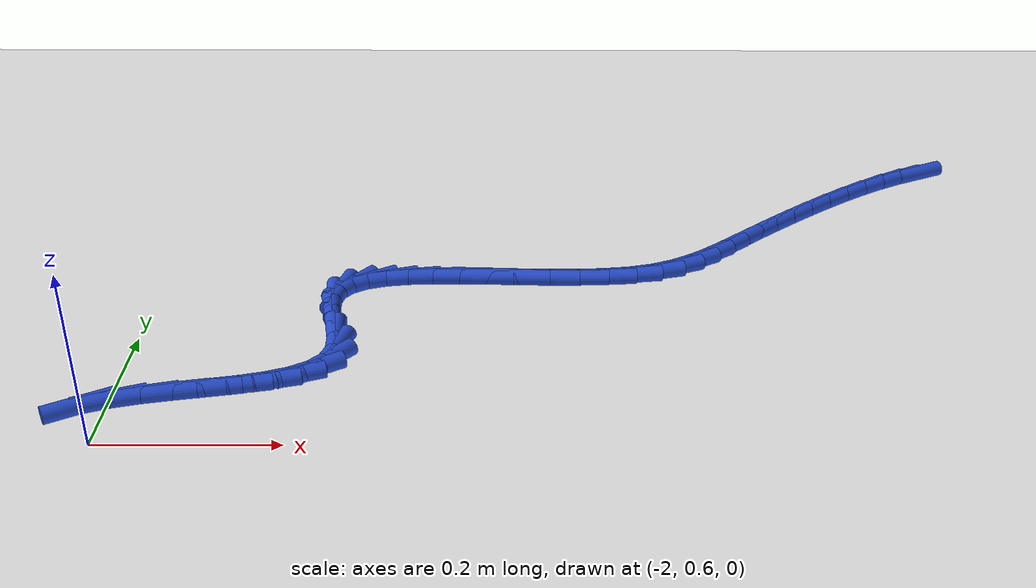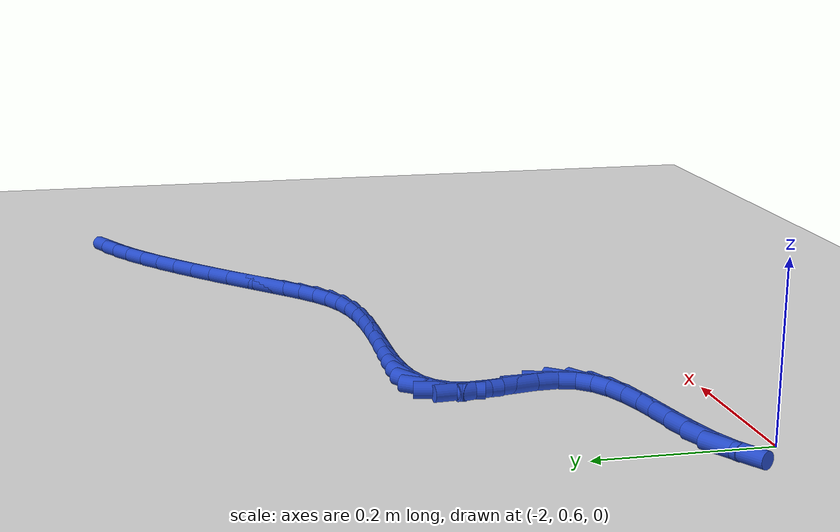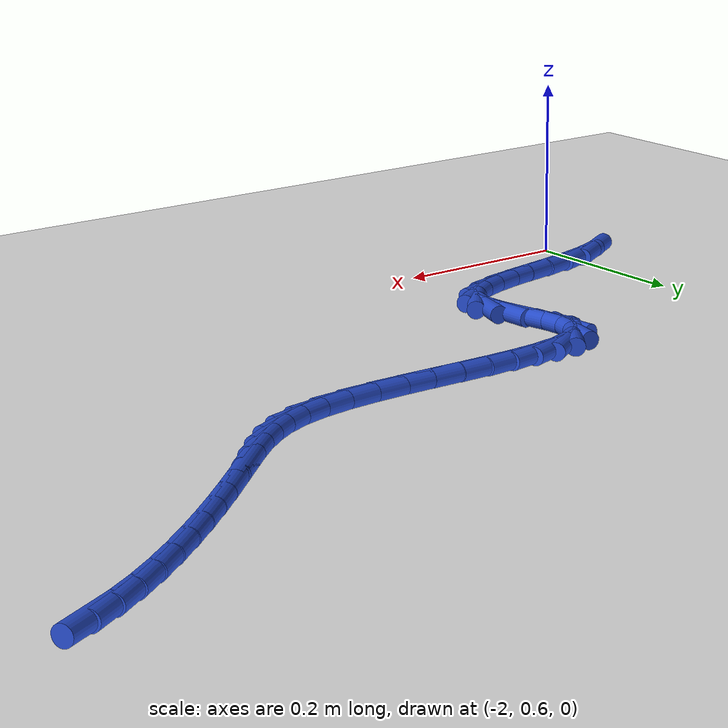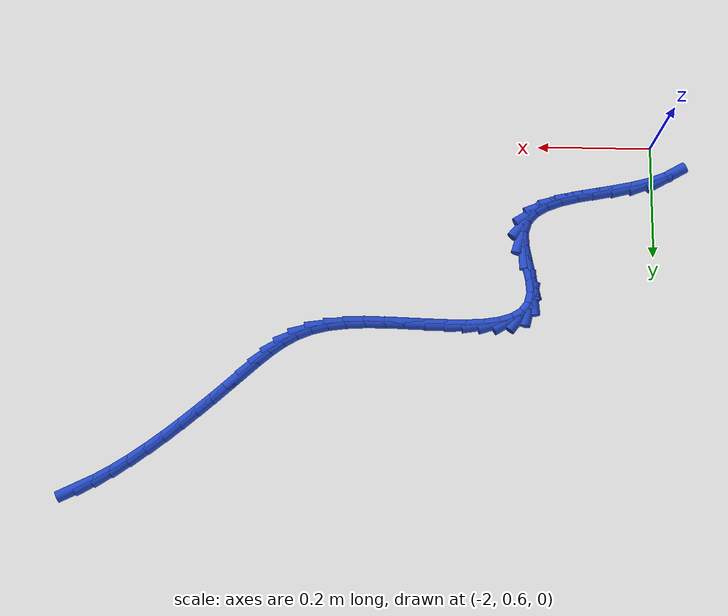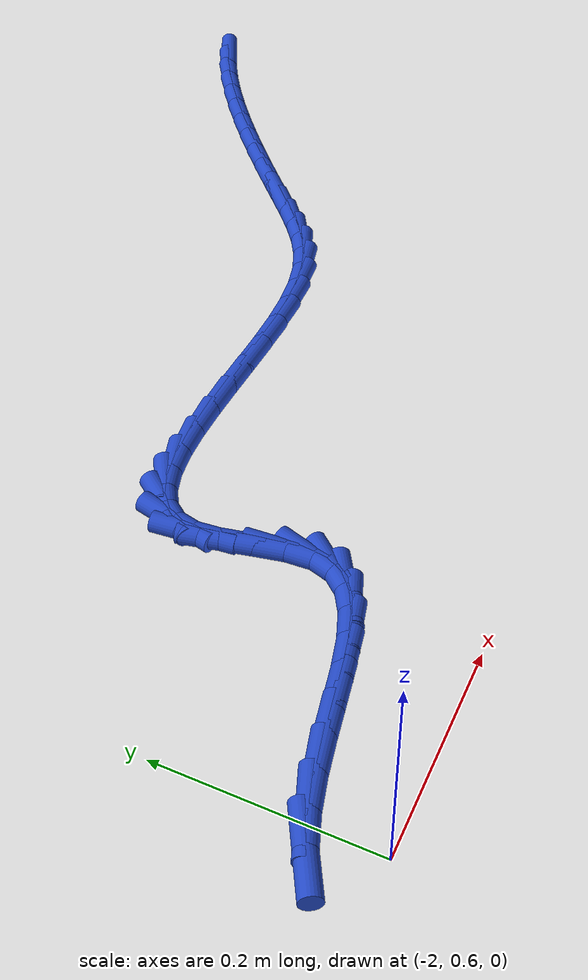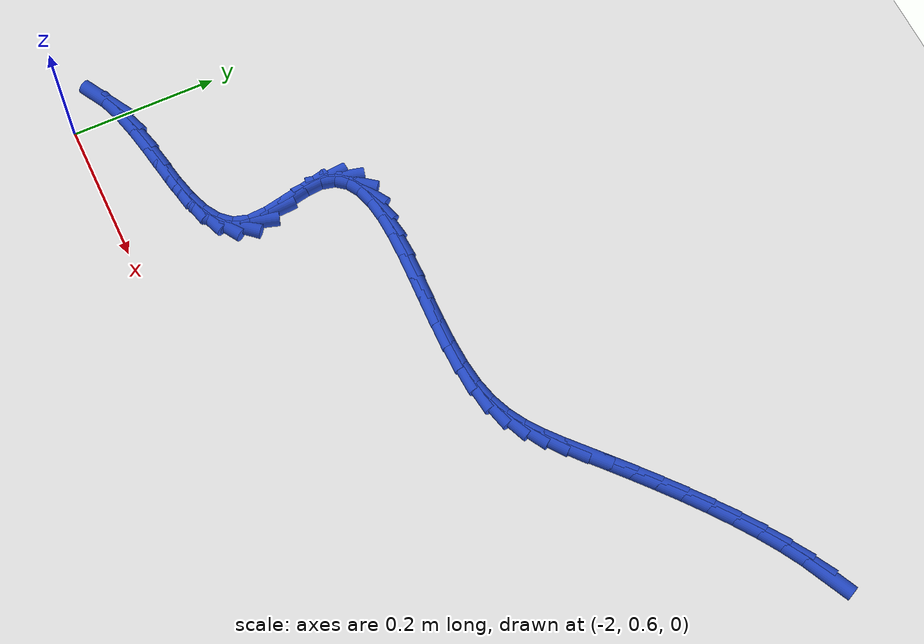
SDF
<sdf version="1.6">
 <world name="default">
  <model name="ground_plane">
   <static>1</static>
   <link name="link">
    <collision name="collision">
     <geometry><plane><normal>0 0 1</normal><size>100 100</size></plane></geometry>
     <surface><friction><ode><mu>100</mu><mu2>50</mu2></ode></friction></surface>
    </collision>
    <visual name="visual">
     <cast_shadows>0</cast_shadows>
     <geometry><plane><normal>0 0 1</normal><size>100 100</size></plane></geometry>
     <material>
      <script><uri>file://media/materials/scripts/gazebo.material</uri><name>Gazebo/WhiteGlow</name></script>
     </material>
    </visual>
   </link>
  </model>
  <model name="line">
   <link name="link_66">
    <pose>-1.024721311013423 1.2171981513148395 0.01 0 1.57 0.45368346202330473</pose>
    <collision name="collision">
     <geometry><cylinder><radius>0.01</radius><length>0.08</length></cylinder></geometry>
    </collision>
    <visual name="visual">
     <material>
      <script><name>Gazebo/Blue</name><uri>file://media/materials/scripts/gazebo.material</uri></script>
     </material>
     <geometry><cylinder><radius>0.01</radius><length>0.08</length></cylinder></geometry>
    </visual>
   </link>
   <link name="link_67">
    <pose>-1.0516665113121868 1.2040595058510333 0.01 0 1.57 0.5214539235836061</pose>
    <collision name="collision">
     <geometry><cylinder><radius>0.01</radius><length>0.08</length></cylinder></geometry>
    </collision>
    <visual name="visual">
     <material>
      <script><name>Gazebo/Blue</name><uri>file://media/materials/scripts/gazebo.material</uri></script>
     </material>
     <geometry><cylinder><radius>0.01</radius><length>0.08</length></cylinder></geometry>
    </visual>
   </link>
   <link name="link_68">
    <pose>-1.079254678940313 1.1882102691016596 0.01 0 1.57 0.5745062912305148</pose>
    <collision name="collision">
     <geometry><cylinder><radius>0.01</radius><length>0.08</length></cylinder></geometry>
    </collision>
    <visual name="visual">
     <material>
      <script><name>Gazebo/Blue</name><uri>file://media/materials/scripts/gazebo.material</uri></script>
     </material>
     <geometry><cylinder><radius>0.01</radius><length>0.08</length></cylinder></geometry>
    </visual>
   </link>
   <link name="link_69">
    <pose>-1.1072257848388778 1.1701033227674955 0.01 0 1.57 0.6165776804479559</pose>
    <collision name="collision">
     <geometry><cylinder><radius>0.01</radius><length>0.08</length></cylinder></geometry>
    </collision>
    <visual name="visual">
     <material>
      <script><name>Gazebo/Blue</name><uri>file://media/materials/scripts/gazebo.material</uri></script>
     </material>
     <geometry><cylinder><radius>0.01</radius><length>0.08</length></cylinder></geometry>
    </visual>
   </link>
   <link name="link_70">
    <pose>-1.1353197999489573 1.150191548549317 0.01 0 1.57 0.6502439988474986</pose>
    <collision name="collision">
     <geometry><cylinder><radius>0.01</radius><length>0.08</length></cylinder></geometry>
    </collision>
    <visual name="visual">
     <material>
      <script><name>Gazebo/Blue</name><uri>file://media/materials/scripts/gazebo.material</uri></script>
     </material>
     <geometry><cylinder><radius>0.01</radius><length>0.08</length></cylinder></geometry>
    </visual>
   </link>
   <link name="link_71">
    <pose>-1.1632766952116276 1.1289278281479032 0.01 0 1.57 0.6772798606839608</pose>
    <collision name="collision">
     <geometry><cylinder><radius>0.01</radius><length>0.08</length></cylinder></geometry>
    </collision>
    <visual name="visual">
     <material>
      <script><name>Gazebo/Blue</name><uri>file://media/materials/scripts/gazebo.material</uri></script>
     </material>
     <geometry><cylinder><radius>0.01</radius><length>0.08</length></cylinder></geometry>
    </visual>
   </link>
   <link name="link_72">
    <pose>-1.1908364415679642 1.1067650432640304 0.01 0 1.57 0.6988953716993768</pose>
    <collision name="collision">
     <geometry><cylinder><radius>0.01</radius><length>0.08</length></cylinder></geometry>
    </collision>
    <visual name="visual">
     <material>
      <script><name>Gazebo/Blue</name><uri>file://media/materials/scripts/gazebo.material</uri></script>
     </material>
     <geometry><cylinder><radius>0.01</radius><length>0.08</length></cylinder></geometry>
    </visual>
   </link>
   <link name="link_73">
    <pose>-1.217739009959043 1.0841560755984754 0.01 0 1.57 0.7158816792470567</pose>
    <collision name="collision">
     <geometry><cylinder><radius>0.01</radius><length>0.08</length></cylinder></geometry>
    </collision>
    <visual name="visual">
     <material>
      <script><name>Gazebo/Blue</name><uri>file://media/materials/scripts/gazebo.material</uri></script>
     </material>
     <geometry><cylinder><radius>0.01</radius><length>0.08</length></cylinder></geometry>
    </visual>
   </link>
   <link name="link_74">
    <pose>-1.2437243713259403 1.0615538068520156 0.01 0 1.57 0.7286881943029709</pose>
    <collision name="collision">
     <geometry><cylinder><radius>0.01</radius><length>0.08</length></cylinder></geometry>
    </collision>
    <visual name="visual">
     <material>
      <script><name>Gazebo/Blue</name><uri>file://media/materials/scripts/gazebo.material</uri></script>
     </material>
     <geometry><cylinder><radius>0.01</radius><length>0.08</length></cylinder></geometry>
    </visual>
   </link>
   <link name="link_75">
    <pose>-1.2685324966097327 1.039411118725428 0.01 0 1.57 0.7374391783126011</pose>
    <collision name="collision">
     <geometry><cylinder><radius>0.01</radius><length>0.08</length></cylinder></geometry>
    </collision>
    <visual name="visual">
     <material>
      <script><name>Gazebo/Blue</name><uri>file://media/materials/scripts/gazebo.material</uri></script>
     </material>
     <geometry><cylinder><radius>0.01</radius><length>0.08</length></cylinder></geometry>
    </visual>
   </link>
   <link name="link_76">
    <pose>-1.291903389928156 1.018180891363287 0.01 0 1.57 0.7365936619908413</pose>
    <collision name="collision">
     <geometry><cylinder><radius>0.01</radius><length>0.08</length></cylinder></geometry>
    </collision>
    <visual name="visual">
     <material>
      <script><name>Gazebo/Blue</name><uri>file://media/materials/scripts/gazebo.material</uri></script>
     </material>
     <geometry><cylinder><radius>0.01</radius><length>0.08</length></cylinder></geometry>
    </visual>
   </link>
   <link name="link_77">
    <pose>-1.3138210802229968 0.9983045585415887 0.01 0 1.57 0.7053982513814845</pose>
    <collision name="collision">
     <geometry><cylinder><radius>0.01</radius><length>0.08</length></cylinder></geometry>
    </collision>
    <visual name="visual">
     <material>
      <script><name>Gazebo/Blue</name><uri>file://media/materials/scripts/gazebo.material</uri></script>
     </material>
     <geometry><cylinder><radius>0.01</radius><length>0.08</length></cylinder></geometry>
    </visual>
   </link>
   <link name="link_78">
    <pose>-1.3350996364459973 0.980184619702808 0.01 0 1.57 0.6359717099641948</pose>
    <collision name="collision">
     <geometry><cylinder><radius>0.01</radius><length>0.08</length></cylinder></geometry>
    </collision>
    <visual name="visual">
     <material>
      <script><name>Gazebo/Blue</name><uri>file://media/materials/scripts/gazebo.material</uri></script>
     </material>
     <geometry><cylinder><radius>0.01</radius><length>0.08</length></cylinder></geometry>
    </visual>
   </link>
   <link name="link_79">
    <pose>-1.3567294495932747 0.9642153036263181 0.01 0 1.57 0.5288680740715266</pose>
    <collision name="collision">
     <geometry><cylinder><radius>0.01</radius><length>0.08</length></cylinder></geometry>
    </collision>
    <visual name="visual">
     <material>
      <script><name>Gazebo/Blue</name><uri>file://media/materials/scripts/gazebo.material</uri></script>
     </material>
     <geometry><cylinder><radius>0.01</radius><length>0.08</length></cylinder></geometry>
    </visual>
   </link>
   <link name="link_80">
    <pose>-1.3797009106609477 0.950790839091492 0.01 0 1.57 0.3928451804721419</pose>
    <collision name="collision">
     <geometry><cylinder><radius>0.01</radius><length>0.08</length></cylinder></geometry>
    </collision>
    <visual name="visual">
     <material>
      <script><name>Gazebo/Blue</name><uri>file://media/materials/scripts/gazebo.material</uri></script>
     </material>
     <geometry><cylinder><radius>0.01</radius><length>0.08</length></cylinder></geometry>
    </visual>
   </link>
   <link name="link_81">
    <pose>-1.4050044106451343 0.9403054548777025 0.01 0 1.57 0.24761680611885878</pose>
    <collision name="collision">
     <geometry><cylinder><radius>0.01</radius><length>0.08</length></cylinder></geometry>
    </collision>
    <visual name="visual">
     <material>
      <script><name>Gazebo/Blue</name><uri>file://media/materials/scripts/gazebo.material</uri></script>
     </material>
     <geometry><cylinder><radius>0.01</radius><length>0.08</length></cylinder></geometry>
    </visual>
   </link>
   <link name="link_82">
    <pose>-1.4335293691621445 0.933094206067047 0.01 0 1.57 0.13297187077041794</pose>
    <collision name="collision">
     <geometry><cylinder><radius>0.01</radius><length>0.08</length></cylinder></geometry>
    </collision>
    <visual name="visual">
     <material>
      <script><name>Gazebo/Blue</name><uri>file://media/materials/scripts/gazebo.material</uri></script>
     </material>
     <geometry><cylinder><radius>0.01</radius><length>0.08</length></cylinder></geometry>
    </visual>
   </link>
   <link name="link_83">
    <pose>-1.4651047118466998 0.928870651333952 0.01 0 1.57 0.05593800054021079</pose>
    <collision name="collision">
     <geometry><cylinder><radius>0.01</radius><length>0.08</length></cylinder></geometry>
    </collision>
    <visual name="visual">
     <material>
      <script><name>Gazebo/Blue</name><uri>file://media/materials/scripts/gazebo.material</uri></script>
     </material>
     <geometry><cylinder><radius>0.01</radius><length>0.08</length></cylinder></geometry>
    </visual>
   </link>
   <link name="link_84">
    <pose>-1.4989253933702482 0.9269768143106053 0.01 0 1.57 0.006441747097596129</pose>
    <collision name="collision">
     <geometry><cylinder><radius>0.01</radius><length>0.08</length></cylinder></geometry>
    </collision>
    <visual name="visual">
     <material>
      <script><name>Gazebo/Blue</name><uri>file://media/materials/scripts/gazebo.material</uri></script>
     </material>
     <geometry><cylinder><radius>0.01</radius><length>0.08</length></cylinder></geometry>
    </visual>
   </link>
   <link name="link_85">
    <pose>-1.5341778454294006 0.9267497237887373 0.01 0 1.57 -0.02164898980343656</pose>
    <collision name="collision">
     <geometry><cylinder><radius>0.01</radius><length>0.08</length></cylinder></geometry>
    </collision>
    <visual name="visual">
     <material>
      <script><name>Gazebo/Blue</name><uri>file://media/materials/scripts/gazebo.material</uri></script>
     </material>
     <geometry><cylinder><radius>0.01</radius><length>0.08</length></cylinder></geometry>
    </visual>
   </link>
   <link name="link_86">
    <pose>-1.5700484997207664 0.9275264085600768 0.01 0 1.57 -0.03131365263800175</pose>
    <collision name="collision">
     <geometry><cylinder><radius>0.01</radius><length>0.08</length></cylinder></geometry>
    </collision>
    <visual name="visual">
     <material>
      <script><name>Gazebo/Blue</name><uri>file://media/materials/scripts/gazebo.material</uri></script>
     </material>
     <geometry><cylinder><radius>0.01</radius><length>0.08</length></cylinder></geometry>
    </visual>
   </link>
   <link name="link_87">
    <pose>-1.6057237879409538 0.928643897416354 0.01 0 1.57 -0.02293815620261843</pose>
    <collision name="collision">
     <geometry><cylinder><radius>0.01</radius><length>0.08</length></cylinder></geometry>
    </collision>
    <visual name="visual">
     <material>
      <script><name>Gazebo/Blue</name><uri>file://media/materials/scripts/gazebo.material</uri></script>
     </material>
     <geometry><cylinder><radius>0.01</radius><length>0.08</length></cylinder></geometry>
    </visual>
   </link>
   <link name="link_88">
    <pose>-1.6403901417865732 0.9294392191492984 0.01 0 1.57 0.00577930049596079</pose>
    <collision name="collision">
     <geometry><cylinder><radius>0.01</radius><length>0.08</length></cylinder></geometry>
    </collision>
    <visual name="visual">
     <material>
      <script><name>Gazebo/Blue</name><uri>file://media/materials/scripts/gazebo.material</uri></script>
     </material>
     <geometry><cylinder><radius>0.01</radius><length>0.08</length></cylinder></geometry>
    </visual>
   </link>
   <link name="link_89">
    <pose>-1.673233992954234 0.9292494025506398 0.01 0 1.57 0.06076789634919975</pose>
    <collision name="collision">
     <geometry><cylinder><radius>0.01</radius><length>0.08</length></cylinder></geometry>
    </collision>
    <visual name="visual">
     <material>
      <script><name>Gazebo/Blue</name><uri>file://media/materials/scripts/gazebo.material</uri></script>
     </material>
     <geometry><cylinder><radius>0.01</radius><length>0.08</length></cylinder></geometry>
    </visual>
   </link>
   <link name="link_90">
    <pose>-1.7034417731405451 0.9274114764121071 0.01 0 1.57 0.1538308614129684</pose>
    <collision name="collision">
     <geometry><cylinder><radius>0.01</radius><length>0.08</length></cylinder></geometry>
    </collision>
    <visual name="visual">
     <material>
      <script><name>Gazebo/Blue</name><uri>file://media/materials/scripts/gazebo.material</uri></script>
     </material>
     <geometry><cylinder><radius>0.01</radius><length>0.08</length></cylinder></geometry>
    </visual>
   </link>
   <link name="link_91">
    <pose>-1.7301999140421167 0.9232624695254306 0.01 0 1.57 0.3066627154247082</pose>
    <collision name="collision">
     <geometry><cylinder><radius>0.01</radius><length>0.08</length></cylinder></geometry>
    </collision>
    <visual name="visual">
     <material>
      <script><name>Gazebo/Blue</name><uri>file://media/materials/scripts/gazebo.material</uri></script>
     </material>
     <geometry><cylinder><radius>0.01</radius><length>0.08</length></cylinder></geometry>
    </visual>
   </link>
   <link name="link_92">
    <pose>-1.752694847355558 0.9161394106823397 0.01 0 1.57 0.553369470734675</pose>
    <collision name="collision">
     <geometry><cylinder><radius>0.01</radius><length>0.08</length></cylinder></geometry>
    </collision>
    <visual name="visual">
     <material>
      <script><name>Gazebo/Blue</name><uri>file://media/materials/scripts/gazebo.material</uri></script>
     </material>
     <geometry><cylinder><radius>0.01</radius><length>0.08</length></cylinder></geometry>
    </visual>
   </link>
   <link name="link_93">
    <pose>-1.7701130047774774 0.9053793286745638 0.01 0 1.57 0.9174770669892862</pose>
    <collision name="collision">
     <geometry><cylinder><radius>0.01</radius><length>0.08</length></cylinder></geometry>
    </collision>
    <visual name="visual">
     <material>
      <script><name>Gazebo/Blue</name><uri>file://media/materials/scripts/gazebo.material</uri></script>
     </material>
     <geometry><cylinder><radius>0.01</radius><length>0.08</length></cylinder></geometry>
    </visual>
   </link>
   <link name="link_94">
    <pose>-1.781640818004486 0.890319252293833 0.01 0 1.57 1.334384019429499</pose>
    <collision name="collision">
     <geometry><cylinder><radius>0.01</radius><length>0.08</length></cylinder></geometry>
    </collision>
    <visual name="visual">
     <material>
      <script><name>Gazebo/Blue</name><uri>file://media/materials/scripts/gazebo.material</uri></script>
     </material>
     <geometry><cylinder><radius>0.01</radius><length>0.08</length></cylinder></geometry>
    </visual>
   </link>
   <link name="link_95">
    <pose>-1.7864647187331921 0.8702962103318765 0.01 0 1.57 -1.486660065563127</pose>
    <collision name="collision">
     <geometry><cylinder><radius>0.01</radius><length>0.08</length></cylinder></geometry>
    </collision>
    <visual name="visual">
     <material>
      <script><name>Gazebo/Blue</name><uri>file://media/materials/scripts/gazebo.material</uri></script>
     </material>
     <geometry><cylinder><radius>0.01</radius><length>0.08</length></cylinder></geometry>
    </visual>
   </link>
   <link name="link_96">
    <pose>-1.784335300283696 0.8450467947844211 0.01 0 1.57 -1.3608108798278207</pose>
    <collision name="collision">
     <geometry><cylinder><radius>0.01</radius><length>0.08</length></cylinder></geometry>
    </collision>
    <visual name="visual">
     <material>
      <script><name>Gazebo/Blue</name><uri>file://media/materials/scripts/gazebo.material</uri></script>
     </material>
     <geometry><cylinder><radius>0.01</radius><length>0.08</length></cylinder></geometry>
    </visual>
   </link>
   <link name="link_97">
    <pose>-1.7782783110785003 0.816627201483778 0.01 0 1.57 -1.372055091858556</pose>
    <collision name="collision">
     <geometry><cylinder><radius>0.01</radius><length>0.08</length></cylinder></geometry>
    </collision>
    <visual name="visual">
     <material>
      <script><name>Gazebo/Blue</name><uri>file://media/materials/scripts/gazebo.material</uri></script>
     </material>
     <geometry><cylinder><radius>0.01</radius><length>0.08</length></cylinder></geometry>
    </visual>
   </link>
   <link name="link_98">
    <pose>-1.7724984126844796 0.7879285825825513 0.01 0 1.57 -1.5211317537154543</pose>
    <collision name="collision">
     <geometry><cylinder><radius>0.01</radius><length>0.08</length></cylinder></geometry>
    </collision>
    <visual name="visual">
     <material>
      <script><name>Gazebo/Blue</name><uri>file://media/materials/scripts/gazebo.material</uri></script>
     </material>
     <geometry><cylinder><radius>0.01</radius><length>0.08</length></cylinder></geometry>
    </visual>
   </link>
   <link name="link_99">
    <pose>-1.7712018268420573 0.7618431952144615 0.01 0 1.57 1.2691365704809239</pose>
    <collision name="collision">
     <geometry><cylinder><radius>0.01</radius><length>0.08</length></cylinder></geometry>
    </collision>
    <visual name="visual">
     <material>
      <script><name>Gazebo/Blue</name><uri>file://media/materials/scripts/gazebo.material</uri></script>
     </material>
     <geometry><cylinder><radius>0.01</radius><length>0.08</length></cylinder></geometry>
    </visual>
   </link>
   <link name="link_100">
    <pose>-1.7777800754076347 0.740701859048506 0.01 0 1.57 0.857307606666855</pose>
    <collision name="collision">
     <geometry><cylinder><radius>0.01</radius><length>0.08</length></cylinder></geometry>
    </collision>
    <visual name="visual">
     <material>
      <script><name>Gazebo/Blue</name><uri>file://media/materials/scripts/gazebo.material</uri></script>
     </material>
     <geometry><cylinder><radius>0.01</radius><length>0.08</length></cylinder></geometry>
    </visual>
   </link>
   <link name="link_101">
    <pose>-1.7919657230880293 0.7243138816411913 0.01 0 1.57 0.5487560092563504</pose>
    <collision name="collision">
     <geometry><cylinder><radius>0.01</radius><length>0.08</length></cylinder></geometry>
    </collision>
    <visual name="visual">
     <material>
      <script><name>Gazebo/Blue</name><uri>file://media/materials/scripts/gazebo.material</uri></script>
     </material>
     <geometry><cylinder><radius>0.01</radius><length>0.08</length></cylinder></geometry>
    </visual>
   </link>
   <link name="link_102">
    <pose>-1.8124645691250199 0.7117809914627069 0.01 0 1.57 0.3590090551290451</pose>
    <collision name="collision">
     <geometry><cylinder><radius>0.01</radius><length>0.08</length></cylinder></geometry>
    </collision>
    <visual name="visual">
     <material>
      <script><name>Gazebo/Blue</name><uri>file://media/materials/scripts/gazebo.material</uri></script>
     </material>
     <geometry><cylinder><radius>0.01</radius><length>0.08</length></cylinder></geometry>
    </visual>
   </link>
   <link name="link_103">
    <pose>-1.8379823601459107 0.7022048807248142 0.01 0 1.57 0.25163042361700283</pose>
    <collision name="collision">
     <geometry><cylinder><radius>0.01</radius><length>0.08</length></cylinder></geometry>
    </collision>
    <visual name="visual">
     <material>
      <script><name>Gazebo/Blue</name><uri>file://media/materials/scripts/gazebo.material</uri></script>
     </material>
     <geometry><cylinder><radius>0.01</radius><length>0.08</length></cylinder></geometry>
    </visual>
   </link>
   <link name="link_104">
    <pose>-1.867224842778005 0.6946872416392738 0.01 0 1.57 0.19809039820069696</pose>
    <collision name="collision">
     <geometry><cylinder><radius>0.01</radius><length>0.08</length></cylinder></geometry>
    </collision>
    <visual name="visual">
     <material>
      <script><name>Gazebo/Blue</name><uri>file://media/materials/scripts/gazebo.material</uri></script>
     </material>
     <geometry><cylinder><radius>0.01</radius><length>0.08</length></cylinder></geometry>
    </visual>
   </link>
   <link name="link_105">
    <pose>-1.898897763648607 0.6883297664178465 0.01 0 1.57 0.18369596860150592</pose>
    <collision name="collision">
     <geometry><cylinder><radius>0.01</radius><length>0.08</length></cylinder></geometry>
    </collision>
    <visual name="visual">
     <material>
      <script><name>Gazebo/Blue</name><uri>file://media/materials/scripts/gazebo.material</uri></script>
     </material>
     <geometry><cylinder><radius>0.01</radius><length>0.08</length></cylinder></geometry>
    </visual>
   </link>
   <link name="link_106">
    <pose>-1.9317068693850201 0.6822341472722931 0.01 0 1.57 0.20333309432680033</pose>
    <collision name="collision">
     <geometry><cylinder><radius>0.01</radius><length>0.08</length></cylinder></geometry>
    </collision>
    <visual name="visual">
     <material>
      <script><name>Gazebo/Blue</name><uri>file://media/materials/scripts/gazebo.material</uri></script>
     </material>
     <geometry><cylinder><radius>0.01</radius><length>0.08</length></cylinder></geometry>
    </visual>
   </link>
   <link name="link_107">
    <pose>-1.9643579066145487 0.6755020764143749 0.01 0 1.57 0.2590208960032586</pose>
    <collision name="collision">
     <geometry><cylinder><radius>0.01</radius><length>0.08</length></cylinder></geometry>
    </collision>
    <visual name="visual">
     <material>
      <script><name>Gazebo/Blue</name><uri>file://media/materials/scripts/gazebo.material</uri></script>
     </material>
     <geometry><cylinder><radius>0.01</radius><length>0.08</length></cylinder></geometry>
    </visual>
   </link>
   <link name="link_108">
    <pose>-1.9955566219644962 0.6672352460558525 0.01 0 1.57 0.35970538378309513</pose>
    <collision name="collision">
     <geometry><cylinder><radius>0.01</radius><length>0.08</length></cylinder></geometry>
    </collision>
    <visual name="visual">
     <material>
      <script><name>Gazebo/Blue</name><uri>file://media/materials/scripts/gazebo.material</uri></script>
     </material>
     <geometry><cylinder><radius>0.01</radius><length>0.08</length></cylinder></geometry>
    </visual>
   </link>
   <link name="link_109">
    <pose>-2.024008762062166 0.6565353484084868 0.01 0 1.57 0.516553195965366</pose>
    <collision name="collision">
     <geometry><cylinder><radius>0.01</radius><length>0.08</length></cylinder></geometry>
    </collision>
    <visual name="visual">
     <material>
      <script><name>Gazebo/Blue</name><uri>file://media/materials/scripts/gazebo.material</uri></script>
     </material>
     <geometry><cylinder><radius>0.01</radius><length>0.08</length></cylinder></geometry>
    </visual>
   </link>
  </model>
 </world>
</sdf>
